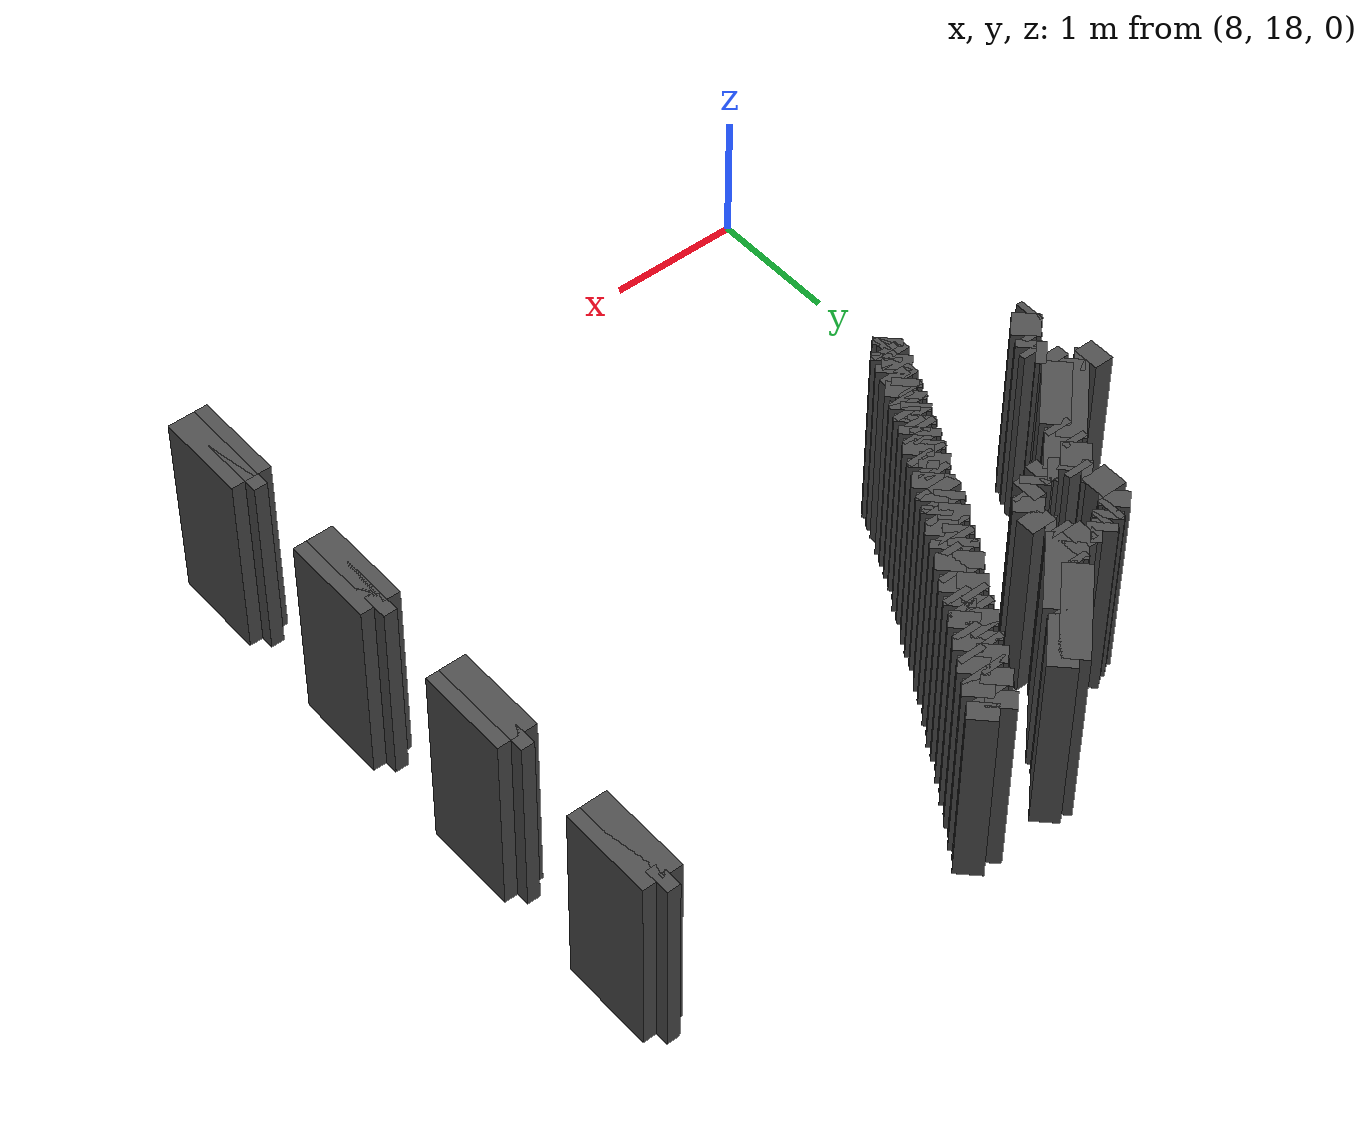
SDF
<sdf version="1.9">
 <model name="generated_walls">
  <static>true</static>
  <link name="wall_85_0">
   <pose>12.750 22.750 0.75 0 0 1.571</pose>
   <collision name="collision"><geometry><box><size>0.700 0.2 1.5</size></box></geometry></collision>
   <visual name="visual">
    <geometry><box><size>0.700 0.2 1.5</size></box></geometry>
    <material><ambient>0.3 0.3 0.3 1</ambient></material>
   </visual>
  </link>
  <link name="wall_85_1">
   <pose>12.800 23.100 0.75 0 0 0.000</pose>
   <collision name="collision"><geometry><box><size>0.100 0.2 1.5</size></box></geometry></collision>
   <visual name="visual">
    <geometry><box><size>0.100 0.2 1.5</size></box></geometry>
    <material><ambient>0.3 0.3 0.3 1</ambient></material>
   </visual>
  </link>
  <link name="wall_85_2">
   <pose>12.850 22.750 0.75 0 0 -1.571</pose>
   <collision name="collision"><geometry><box><size>0.700 0.2 1.5</size></box></geometry></collision>
   <visual name="visual">
    <geometry><box><size>0.700 0.2 1.5</size></box></geometry>
    <material><ambient>0.3 0.3 0.3 1</ambient></material>
   </visual>
  </link>
  <link name="wall_87_0">
   <pose>12.750 21.400 0.75 0 0 1.571</pose>
   <collision name="collision"><geometry><box><size>0.700 0.2 1.5</size></box></geometry></collision>
   <visual name="visual">
    <geometry><box><size>0.700 0.2 1.5</size></box></geometry>
    <material><ambient>0.3 0.3 0.3 1</ambient></material>
   </visual>
  </link>
  <link name="wall_87_1">
   <pose>12.800 21.750 0.75 0 0 0.000</pose>
   <collision name="collision"><geometry><box><size>0.100 0.2 1.5</size></box></geometry></collision>
   <visual name="visual">
    <geometry><box><size>0.100 0.2 1.5</size></box></geometry>
    <material><ambient>0.3 0.3 0.3 1</ambient></material>
   </visual>
  </link>
  <link name="wall_87_2">
   <pose>12.850 21.400 0.75 0 0 -1.571</pose>
   <collision name="collision"><geometry><box><size>0.700 0.2 1.5</size></box></geometry></collision>
   <visual name="visual">
    <geometry><box><size>0.700 0.2 1.5</size></box></geometry>
    <material><ambient>0.3 0.3 0.3 1</ambient></material>
   </visual>
  </link>
  <link name="wall_97_0">
   <pose>12.750 20.050 0.75 0 0 1.571</pose>
   <collision name="collision"><geometry><box><size>0.700 0.2 1.5</size></box></geometry></collision>
   <visual name="visual">
    <geometry><box><size>0.700 0.2 1.5</size></box></geometry>
    <material><ambient>0.3 0.3 0.3 1</ambient></material>
   </visual>
  </link>
  <link name="wall_97_1">
   <pose>12.800 20.400 0.75 0 0 0.000</pose>
   <collision name="collision"><geometry><box><size>0.100 0.2 1.5</size></box></geometry></collision>
   <visual name="visual">
    <geometry><box><size>0.100 0.2 1.5</size></box></geometry>
    <material><ambient>0.3 0.3 0.3 1</ambient></material>
   </visual>
  </link>
  <link name="wall_97_2">
   <pose>12.850 20.050 0.75 0 0 -1.571</pose>
   <collision name="collision"><geometry><box><size>0.700 0.2 1.5</size></box></geometry></collision>
   <visual name="visual">
    <geometry><box><size>0.700 0.2 1.5</size></box></geometry>
    <material><ambient>0.3 0.3 0.3 1</ambient></material>
   </visual>
  </link>
  <link name="wall_114_0">
   <pose>12.750 18.700 0.75 0 0 1.571</pose>
   <collision name="collision"><geometry><box><size>0.700 0.2 1.5</size></box></geometry></collision>
   <visual name="visual">
    <geometry><box><size>0.700 0.2 1.5</size></box></geometry>
    <material><ambient>0.3 0.3 0.3 1</ambient></material>
   </visual>
  </link>
  <link name="wall_114_1">
   <pose>12.800 19.050 0.75 0 0 0.000</pose>
   <collision name="collision"><geometry><box><size>0.100 0.2 1.5</size></box></geometry></collision>
   <visual name="visual">
    <geometry><box><size>0.100 0.2 1.5</size></box></geometry>
    <material><ambient>0.3 0.3 0.3 1</ambient></material>
   </visual>
  </link>
  <link name="wall_114_2">
   <pose>12.850 18.700 0.75 0 0 -1.571</pose>
   <collision name="collision"><geometry><box><size>0.700 0.2 1.5</size></box></geometry></collision>
   <visual name="visual">
    <geometry><box><size>0.700 0.2 1.5</size></box></geometry>
    <material><ambient>0.3 0.3 0.3 1</ambient></material>
   </visual>
  </link>
  <link name="wall_161_263">
   <pose>7.975 21.600 0.75 0 0 0.000</pose>
   <collision name="collision"><geometry><box><size>0.150 0.2 1.5</size></box></geometry></collision>
   <visual name="visual">
    <geometry><box><size>0.150 0.2 1.5</size></box></geometry>
    <material><ambient>0.3 0.3 0.3 1</ambient></material>
   </visual>
  </link>
  <link name="wall_161_264">
   <pose>8.075 21.575 0.75 0 0 -0.785</pose>
   <collision name="collision"><geometry><box><size>0.071 0.2 1.5</size></box></geometry></collision>
   <visual name="visual">
    <geometry><box><size>0.071 0.2 1.5</size></box></geometry>
    <material><ambient>0.3 0.3 0.3 1</ambient></material>
   </visual>
  </link>
  <link name="wall_161_265">
   <pose>8.350 21.800 0.75 0 0 0.785</pose>
   <collision name="collision"><geometry><box><size>0.707 0.2 1.5</size></box></geometry></collision>
   <visual name="visual">
    <geometry><box><size>0.707 0.2 1.5</size></box></geometry>
    <material><ambient>0.3 0.3 0.3 1</ambient></material>
   </visual>
  </link>
  <link name="wall_161_266">
   <pose>8.600 22.075 0.75 0 0 1.571</pose>
   <collision name="collision"><geometry><box><size>0.050 0.2 1.5</size></box></geometry></collision>
   <visual name="visual">
    <geometry><box><size>0.050 0.2 1.5</size></box></geometry>
    <material><ambient>0.3 0.3 0.3 1</ambient></material>
   </visual>
  </link>
  <link name="wall_161_267">
   <pose>8.675 22.175 0.75 0 0 0.785</pose>
   <collision name="collision"><geometry><box><size>0.212 0.2 1.5</size></box></geometry></collision>
   <visual name="visual">
    <geometry><box><size>0.212 0.2 1.5</size></box></geometry>
    <material><ambient>0.3 0.3 0.3 1</ambient></material>
   </visual>
  </link>
  <link name="wall_161_268">
   <pose>8.750 22.275 0.75 0 0 1.571</pose>
   <collision name="collision"><geometry><box><size>0.050 0.2 1.5</size></box></geometry></collision>
   <visual name="visual">
    <geometry><box><size>0.050 0.2 1.5</size></box></geometry>
    <material><ambient>0.3 0.3 0.3 1</ambient></material>
   </visual>
  </link>
  <link name="wall_161_269">
   <pose>8.725 22.325 0.75 0 0 2.356</pose>
   <collision name="collision"><geometry><box><size>0.071 0.2 1.5</size></box></geometry></collision>
   <visual name="visual">
    <geometry><box><size>0.071 0.2 1.5</size></box></geometry>
    <material><ambient>0.3 0.3 0.3 1</ambient></material>
   </visual>
  </link>
  <link name="wall_161_270">
   <pose>8.700 22.450 0.75 0 0 1.571</pose>
   <collision name="collision"><geometry><box><size>0.200 0.2 1.5</size></box></geometry></collision>
   <visual name="visual">
    <geometry><box><size>0.200 0.2 1.5</size></box></geometry>
    <material><ambient>0.3 0.3 0.3 1</ambient></material>
   </visual>
  </link>
  <link name="wall_161_271">
   <pose>8.750 22.600 0.75 0 0 0.785</pose>
   <collision name="collision"><geometry><box><size>0.141 0.2 1.5</size></box></geometry></collision>
   <visual name="visual">
    <geometry><box><size>0.141 0.2 1.5</size></box></geometry>
    <material><ambient>0.3 0.3 0.3 1</ambient></material>
   </visual>
  </link>
  <link name="wall_161_272">
   <pose>8.825 22.650 0.75 0 0 0.000</pose>
   <collision name="collision"><geometry><box><size>0.050 0.2 1.5</size></box></geometry></collision>
   <visual name="visual">
    <geometry><box><size>0.050 0.2 1.5</size></box></geometry>
    <material><ambient>0.3 0.3 0.3 1</ambient></material>
   </visual>
  </link>
  <link name="wall_161_273">
   <pose>8.875 22.675 0.75 0 0 0.785</pose>
   <collision name="collision"><geometry><box><size>0.071 0.2 1.5</size></box></geometry></collision>
   <visual name="visual">
    <geometry><box><size>0.071 0.2 1.5</size></box></geometry>
    <material><ambient>0.3 0.3 0.3 1</ambient></material>
   </visual>
  </link>
  <link name="wall_161_274">
   <pose>8.925 22.700 0.75 0 0 0.000</pose>
   <collision name="collision"><geometry><box><size>0.050 0.2 1.5</size></box></geometry></collision>
   <visual name="visual">
    <geometry><box><size>0.050 0.2 1.5</size></box></geometry>
    <material><ambient>0.3 0.3 0.3 1</ambient></material>
   </visual>
  </link>
  <link name="wall_161_275">
   <pose>8.975 22.725 0.75 0 0 0.785</pose>
   <collision name="collision"><geometry><box><size>0.071 0.2 1.5</size></box></geometry></collision>
   <visual name="visual">
    <geometry><box><size>0.071 0.2 1.5</size></box></geometry>
    <material><ambient>0.3 0.3 0.3 1</ambient></material>
   </visual>
  </link>
  <link name="wall_161_276">
   <pose>9.025 22.725 0.75 0 0 -0.785</pose>
   <collision name="collision"><geometry><box><size>0.071 0.2 1.5</size></box></geometry></collision>
   <visual name="visual">
    <geometry><box><size>0.071 0.2 1.5</size></box></geometry>
    <material><ambient>0.3 0.3 0.3 1</ambient></material>
   </visual>
  </link>
  <link name="wall_161_277">
   <pose>9.125 22.700 0.75 0 0 0.000</pose>
   <collision name="collision"><geometry><box><size>0.150 0.2 1.5</size></box></geometry></collision>
   <visual name="visual">
    <geometry><box><size>0.150 0.2 1.5</size></box></geometry>
    <material><ambient>0.3 0.3 0.3 1</ambient></material>
   </visual>
  </link>
  <link name="wall_161_278">
   <pose>9.250 22.750 0.75 0 0 0.785</pose>
   <collision name="collision"><geometry><box><size>0.141 0.2 1.5</size></box></geometry></collision>
   <visual name="visual">
    <geometry><box><size>0.141 0.2 1.5</size></box></geometry>
    <material><ambient>0.3 0.3 0.3 1</ambient></material>
   </visual>
  </link>
  <link name="wall_161_279">
   <pose>9.300 22.825 0.75 0 0 1.571</pose>
   <collision name="collision"><geometry><box><size>0.050 0.2 1.5</size></box></geometry></collision>
   <visual name="visual">
    <geometry><box><size>0.050 0.2 1.5</size></box></geometry>
    <material><ambient>0.3 0.3 0.3 1</ambient></material>
   </visual>
  </link>
  <link name="wall_161_280">
   <pose>9.575 23.125 0.75 0 0 0.785</pose>
   <collision name="collision"><geometry><box><size>0.778 0.2 1.5</size></box></geometry></collision>
   <visual name="visual">
    <geometry><box><size>0.778 0.2 1.5</size></box></geometry>
    <material><ambient>0.3 0.3 0.3 1</ambient></material>
   </visual>
  </link>
  <link name="wall_161_728">
   <pose>10.550 23.350 0.75 0 0 -2.356</pose>
   <collision name="collision"><geometry><box><size>0.141 0.2 1.5</size></box></geometry></collision>
   <visual name="visual">
    <geometry><box><size>0.141 0.2 1.5</size></box></geometry>
    <material><ambient>0.3 0.3 0.3 1</ambient></material>
   </visual>
  </link>
  <link name="wall_161_729">
   <pose>10.500 23.275 0.75 0 0 -1.571</pose>
   <collision name="collision"><geometry><box><size>0.050 0.2 1.5</size></box></geometry></collision>
   <visual name="visual">
    <geometry><box><size>0.050 0.2 1.5</size></box></geometry>
    <material><ambient>0.3 0.3 0.3 1</ambient></material>
   </visual>
  </link>
  <link name="wall_161_730">
   <pose>10.450 23.200 0.75 0 0 -2.356</pose>
   <collision name="collision"><geometry><box><size>0.141 0.2 1.5</size></box></geometry></collision>
   <visual name="visual">
    <geometry><box><size>0.141 0.2 1.5</size></box></geometry>
    <material><ambient>0.3 0.3 0.3 1</ambient></material>
   </visual>
  </link>
  <link name="wall_161_731">
   <pose>10.400 23.125 0.75 0 0 -1.571</pose>
   <collision name="collision"><geometry><box><size>0.050 0.2 1.5</size></box></geometry></collision>
   <visual name="visual">
    <geometry><box><size>0.050 0.2 1.5</size></box></geometry>
    <material><ambient>0.3 0.3 0.3 1</ambient></material>
   </visual>
  </link>
  <link name="wall_161_732">
   <pose>10.350 23.050 0.75 0 0 -2.356</pose>
   <collision name="collision"><geometry><box><size>0.141 0.2 1.5</size></box></geometry></collision>
   <visual name="visual">
    <geometry><box><size>0.141 0.2 1.5</size></box></geometry>
    <material><ambient>0.3 0.3 0.3 1</ambient></material>
   </visual>
  </link>
  <link name="wall_161_733">
   <pose>10.300 22.975 0.75 0 0 -1.571</pose>
   <collision name="collision"><geometry><box><size>0.050 0.2 1.5</size></box></geometry></collision>
   <visual name="visual">
    <geometry><box><size>0.050 0.2 1.5</size></box></geometry>
    <material><ambient>0.3 0.3 0.3 1</ambient></material>
   </visual>
  </link>
  <link name="wall_161_734">
   <pose>10.250 22.900 0.75 0 0 -2.356</pose>
   <collision name="collision"><geometry><box><size>0.141 0.2 1.5</size></box></geometry></collision>
   <visual name="visual">
    <geometry><box><size>0.141 0.2 1.5</size></box></geometry>
    <material><ambient>0.3 0.3 0.3 1</ambient></material>
   </visual>
  </link>
  <link name="wall_161_735">
   <pose>10.200 22.825 0.75 0 0 -1.571</pose>
   <collision name="collision"><geometry><box><size>0.050 0.2 1.5</size></box></geometry></collision>
   <visual name="visual">
    <geometry><box><size>0.050 0.2 1.5</size></box></geometry>
    <material><ambient>0.3 0.3 0.3 1</ambient></material>
   </visual>
  </link>
  <link name="wall_161_736">
   <pose>10.150 22.750 0.75 0 0 -2.356</pose>
   <collision name="collision"><geometry><box><size>0.141 0.2 1.5</size></box></geometry></collision>
   <visual name="visual">
    <geometry><box><size>0.141 0.2 1.5</size></box></geometry>
    <material><ambient>0.3 0.3 0.3 1</ambient></material>
   </visual>
  </link>
  <link name="wall_161_737">
   <pose>10.100 22.675 0.75 0 0 -1.571</pose>
   <collision name="collision"><geometry><box><size>0.050 0.2 1.5</size></box></geometry></collision>
   <visual name="visual">
    <geometry><box><size>0.050 0.2 1.5</size></box></geometry>
    <material><ambient>0.3 0.3 0.3 1</ambient></material>
   </visual>
  </link>
  <link name="wall_161_738">
   <pose>10.075 22.625 0.75 0 0 -2.356</pose>
   <collision name="collision"><geometry><box><size>0.071 0.2 1.5</size></box></geometry></collision>
   <visual name="visual">
    <geometry><box><size>0.071 0.2 1.5</size></box></geometry>
    <material><ambient>0.3 0.3 0.3 1</ambient></material>
   </visual>
  </link>
  <link name="wall_161_739">
   <pose>10.050 22.575 0.75 0 0 -1.571</pose>
   <collision name="collision"><geometry><box><size>0.050 0.2 1.5</size></box></geometry></collision>
   <visual name="visual">
    <geometry><box><size>0.050 0.2 1.5</size></box></geometry>
    <material><ambient>0.3 0.3 0.3 1</ambient></material>
   </visual>
  </link>
  <link name="wall_161_740">
   <pose>10.000 22.500 0.75 0 0 -2.356</pose>
   <collision name="collision"><geometry><box><size>0.141 0.2 1.5</size></box></geometry></collision>
   <visual name="visual">
    <geometry><box><size>0.141 0.2 1.5</size></box></geometry>
    <material><ambient>0.3 0.3 0.3 1</ambient></material>
   </visual>
  </link>
  <link name="wall_161_741">
   <pose>9.950 22.425 0.75 0 0 -1.571</pose>
   <collision name="collision"><geometry><box><size>0.050 0.2 1.5</size></box></geometry></collision>
   <visual name="visual">
    <geometry><box><size>0.050 0.2 1.5</size></box></geometry>
    <material><ambient>0.3 0.3 0.3 1</ambient></material>
   </visual>
  </link>
  <link name="wall_161_742">
   <pose>9.900 22.350 0.75 0 0 -2.356</pose>
   <collision name="collision"><geometry><box><size>0.141 0.2 1.5</size></box></geometry></collision>
   <visual name="visual">
    <geometry><box><size>0.141 0.2 1.5</size></box></geometry>
    <material><ambient>0.3 0.3 0.3 1</ambient></material>
   </visual>
  </link>
  <link name="wall_161_743">
   <pose>9.850 22.275 0.75 0 0 -1.571</pose>
   <collision name="collision"><geometry><box><size>0.050 0.2 1.5</size></box></geometry></collision>
   <visual name="visual">
    <geometry><box><size>0.050 0.2 1.5</size></box></geometry>
    <material><ambient>0.3 0.3 0.3 1</ambient></material>
   </visual>
  </link>
  <link name="wall_161_744">
   <pose>9.825 22.225 0.75 0 0 -2.356</pose>
   <collision name="collision"><geometry><box><size>0.071 0.2 1.5</size></box></geometry></collision>
   <visual name="visual">
    <geometry><box><size>0.071 0.2 1.5</size></box></geometry>
    <material><ambient>0.3 0.3 0.3 1</ambient></material>
   </visual>
  </link>
  <link name="wall_161_745">
   <pose>9.800 22.175 0.75 0 0 -1.571</pose>
   <collision name="collision"><geometry><box><size>0.050 0.2 1.5</size></box></geometry></collision>
   <visual name="visual">
    <geometry><box><size>0.050 0.2 1.5</size></box></geometry>
    <material><ambient>0.3 0.3 0.3 1</ambient></material>
   </visual>
  </link>
  <link name="wall_161_746">
   <pose>9.750 22.100 0.75 0 0 -2.356</pose>
   <collision name="collision"><geometry><box><size>0.141 0.2 1.5</size></box></geometry></collision>
   <visual name="visual">
    <geometry><box><size>0.141 0.2 1.5</size></box></geometry>
    <material><ambient>0.3 0.3 0.3 1</ambient></material>
   </visual>
  </link>
  <link name="wall_161_747">
   <pose>9.700 22.025 0.75 0 0 -1.571</pose>
   <collision name="collision"><geometry><box><size>0.050 0.2 1.5</size></box></geometry></collision>
   <visual name="visual">
    <geometry><box><size>0.050 0.2 1.5</size></box></geometry>
    <material><ambient>0.3 0.3 0.3 1</ambient></material>
   </visual>
  </link>
  <link name="wall_161_748">
   <pose>9.675 21.975 0.75 0 0 -2.356</pose>
   <collision name="collision"><geometry><box><size>0.071 0.2 1.5</size></box></geometry></collision>
   <visual name="visual">
    <geometry><box><size>0.071 0.2 1.5</size></box></geometry>
    <material><ambient>0.3 0.3 0.3 1</ambient></material>
   </visual>
  </link>
  <link name="wall_161_749">
   <pose>9.650 21.925 0.75 0 0 -1.571</pose>
   <collision name="collision"><geometry><box><size>0.050 0.2 1.5</size></box></geometry></collision>
   <visual name="visual">
    <geometry><box><size>0.050 0.2 1.5</size></box></geometry>
    <material><ambient>0.3 0.3 0.3 1</ambient></material>
   </visual>
  </link>
  <link name="wall_161_750">
   <pose>9.625 21.875 0.75 0 0 -2.356</pose>
   <collision name="collision"><geometry><box><size>0.071 0.2 1.5</size></box></geometry></collision>
   <visual name="visual">
    <geometry><box><size>0.071 0.2 1.5</size></box></geometry>
    <material><ambient>0.3 0.3 0.3 1</ambient></material>
   </visual>
  </link>
  <link name="wall_161_751">
   <pose>9.600 21.825 0.75 0 0 -1.571</pose>
   <collision name="collision"><geometry><box><size>0.050 0.2 1.5</size></box></geometry></collision>
   <visual name="visual">
    <geometry><box><size>0.050 0.2 1.5</size></box></geometry>
    <material><ambient>0.3 0.3 0.3 1</ambient></material>
   </visual>
  </link>
  <link name="wall_161_752">
   <pose>9.550 21.750 0.75 0 0 -2.356</pose>
   <collision name="collision"><geometry><box><size>0.141 0.2 1.5</size></box></geometry></collision>
   <visual name="visual">
    <geometry><box><size>0.141 0.2 1.5</size></box></geometry>
    <material><ambient>0.3 0.3 0.3 1</ambient></material>
   </visual>
  </link>
  <link name="wall_161_753">
   <pose>9.500 21.675 0.75 0 0 -1.571</pose>
   <collision name="collision"><geometry><box><size>0.050 0.2 1.5</size></box></geometry></collision>
   <visual name="visual">
    <geometry><box><size>0.050 0.2 1.5</size></box></geometry>
    <material><ambient>0.3 0.3 0.3 1</ambient></material>
   </visual>
  </link>
  <link name="wall_161_754">
   <pose>9.475 21.625 0.75 0 0 -2.356</pose>
   <collision name="collision"><geometry><box><size>0.071 0.2 1.5</size></box></geometry></collision>
   <visual name="visual">
    <geometry><box><size>0.071 0.2 1.5</size></box></geometry>
    <material><ambient>0.3 0.3 0.3 1</ambient></material>
   </visual>
  </link>
  <link name="wall_161_755">
   <pose>9.450 21.575 0.75 0 0 -1.571</pose>
   <collision name="collision"><geometry><box><size>0.050 0.2 1.5</size></box></geometry></collision>
   <visual name="visual">
    <geometry><box><size>0.050 0.2 1.5</size></box></geometry>
    <material><ambient>0.3 0.3 0.3 1</ambient></material>
   </visual>
  </link>
  <link name="wall_161_756">
   <pose>9.400 21.500 0.75 0 0 -2.356</pose>
   <collision name="collision"><geometry><box><size>0.141 0.2 1.5</size></box></geometry></collision>
   <visual name="visual">
    <geometry><box><size>0.141 0.2 1.5</size></box></geometry>
    <material><ambient>0.3 0.3 0.3 1</ambient></material>
   </visual>
  </link>
  <link name="wall_161_757">
   <pose>9.350 21.425 0.75 0 0 -1.571</pose>
   <collision name="collision"><geometry><box><size>0.050 0.2 1.5</size></box></geometry></collision>
   <visual name="visual">
    <geometry><box><size>0.050 0.2 1.5</size></box></geometry>
    <material><ambient>0.3 0.3 0.3 1</ambient></material>
   </visual>
  </link>
  <link name="wall_161_758">
   <pose>9.325 21.375 0.75 0 0 -2.356</pose>
   <collision name="collision"><geometry><box><size>0.071 0.2 1.5</size></box></geometry></collision>
   <visual name="visual">
    <geometry><box><size>0.071 0.2 1.5</size></box></geometry>
    <material><ambient>0.3 0.3 0.3 1</ambient></material>
   </visual>
  </link>
  <link name="wall_161_759">
   <pose>9.300 21.325 0.75 0 0 -1.571</pose>
   <collision name="collision"><geometry><box><size>0.050 0.2 1.5</size></box></geometry></collision>
   <visual name="visual">
    <geometry><box><size>0.050 0.2 1.5</size></box></geometry>
    <material><ambient>0.3 0.3 0.3 1</ambient></material>
   </visual>
  </link>
  <link name="wall_161_760">
   <pose>9.275 21.275 0.75 0 0 -2.356</pose>
   <collision name="collision"><geometry><box><size>0.071 0.2 1.5</size></box></geometry></collision>
   <visual name="visual">
    <geometry><box><size>0.071 0.2 1.5</size></box></geometry>
    <material><ambient>0.3 0.3 0.3 1</ambient></material>
   </visual>
  </link>
  <link name="wall_161_761">
   <pose>9.250 21.225 0.75 0 0 -1.571</pose>
   <collision name="collision"><geometry><box><size>0.050 0.2 1.5</size></box></geometry></collision>
   <visual name="visual">
    <geometry><box><size>0.050 0.2 1.5</size></box></geometry>
    <material><ambient>0.3 0.3 0.3 1</ambient></material>
   </visual>
  </link>
  <link name="wall_161_762">
   <pose>9.225 21.175 0.75 0 0 -2.356</pose>
   <collision name="collision"><geometry><box><size>0.071 0.2 1.5</size></box></geometry></collision>
   <visual name="visual">
    <geometry><box><size>0.071 0.2 1.5</size></box></geometry>
    <material><ambient>0.3 0.3 0.3 1</ambient></material>
   </visual>
  </link>
  <link name="wall_161_763">
   <pose>9.200 21.125 0.75 0 0 -1.571</pose>
   <collision name="collision"><geometry><box><size>0.050 0.2 1.5</size></box></geometry></collision>
   <visual name="visual">
    <geometry><box><size>0.050 0.2 1.5</size></box></geometry>
    <material><ambient>0.3 0.3 0.3 1</ambient></material>
   </visual>
  </link>
  <link name="wall_161_764">
   <pose>9.150 21.050 0.75 0 0 -2.356</pose>
   <collision name="collision"><geometry><box><size>0.141 0.2 1.5</size></box></geometry></collision>
   <visual name="visual">
    <geometry><box><size>0.141 0.2 1.5</size></box></geometry>
    <material><ambient>0.3 0.3 0.3 1</ambient></material>
   </visual>
  </link>
  <link name="wall_161_765">
   <pose>9.100 20.950 0.75 0 0 -1.571</pose>
   <collision name="collision"><geometry><box><size>0.100 0.2 1.5</size></box></geometry></collision>
   <visual name="visual">
    <geometry><box><size>0.100 0.2 1.5</size></box></geometry>
    <material><ambient>0.3 0.3 0.3 1</ambient></material>
   </visual>
  </link>
  <link name="wall_161_766">
   <pose>9.075 20.875 0.75 0 0 -2.356</pose>
   <collision name="collision"><geometry><box><size>0.071 0.2 1.5</size></box></geometry></collision>
   <visual name="visual">
    <geometry><box><size>0.071 0.2 1.5</size></box></geometry>
    <material><ambient>0.3 0.3 0.3 1</ambient></material>
   </visual>
  </link>
  <link name="wall_161_767">
   <pose>9.050 20.825 0.75 0 0 -1.571</pose>
   <collision name="collision"><geometry><box><size>0.050 0.2 1.5</size></box></geometry></collision>
   <visual name="visual">
    <geometry><box><size>0.050 0.2 1.5</size></box></geometry>
    <material><ambient>0.3 0.3 0.3 1</ambient></material>
   </visual>
  </link>
  <link name="wall_161_768">
   <pose>9.025 20.775 0.75 0 0 -2.356</pose>
   <collision name="collision"><geometry><box><size>0.071 0.2 1.5</size></box></geometry></collision>
   <visual name="visual">
    <geometry><box><size>0.071 0.2 1.5</size></box></geometry>
    <material><ambient>0.3 0.3 0.3 1</ambient></material>
   </visual>
  </link>
  <link name="wall_161_769">
   <pose>9.000 20.725 0.75 0 0 -1.571</pose>
   <collision name="collision"><geometry><box><size>0.050 0.2 1.5</size></box></geometry></collision>
   <visual name="visual">
    <geometry><box><size>0.050 0.2 1.5</size></box></geometry>
    <material><ambient>0.3 0.3 0.3 1</ambient></material>
   </visual>
  </link>
  <link name="wall_161_770">
   <pose>8.975 20.700 0.75 0 0 3.142</pose>
   <collision name="collision"><geometry><box><size>0.050 0.2 1.5</size></box></geometry></collision>
   <visual name="visual">
    <geometry><box><size>0.050 0.2 1.5</size></box></geometry>
    <material><ambient>0.3 0.3 0.3 1</ambient></material>
   </visual>
  </link>
  <link name="wall_161_771">
   <pose>8.925 20.675 0.75 0 0 -2.356</pose>
   <collision name="collision"><geometry><box><size>0.071 0.2 1.5</size></box></geometry></collision>
   <visual name="visual">
    <geometry><box><size>0.071 0.2 1.5</size></box></geometry>
    <material><ambient>0.3 0.3 0.3 1</ambient></material>
   </visual>
  </link>
  <link name="wall_161_772">
   <pose>8.925 20.675 0.75 0 0 0.785</pose>
   <collision name="collision"><geometry><box><size>0.071 0.2 1.5</size></box></geometry></collision>
   <visual name="visual">
    <geometry><box><size>0.071 0.2 1.5</size></box></geometry>
    <material><ambient>0.3 0.3 0.3 1</ambient></material>
   </visual>
  </link>
  <link name="wall_161_773">
   <pose>8.950 20.750 0.75 0 0 1.571</pose>
   <collision name="collision"><geometry><box><size>0.100 0.2 1.5</size></box></geometry></collision>
   <visual name="visual">
    <geometry><box><size>0.100 0.2 1.5</size></box></geometry>
    <material><ambient>0.3 0.3 0.3 1</ambient></material>
   </visual>
  </link>
  <link name="wall_161_774">
   <pose>9.000 20.850 0.75 0 0 0.785</pose>
   <collision name="collision"><geometry><box><size>0.141 0.2 1.5</size></box></geometry></collision>
   <visual name="visual">
    <geometry><box><size>0.141 0.2 1.5</size></box></geometry>
    <material><ambient>0.3 0.3 0.3 1</ambient></material>
   </visual>
  </link>
  <link name="wall_161_775">
   <pose>9.050 20.950 0.75 0 0 1.571</pose>
   <collision name="collision"><geometry><box><size>0.100 0.2 1.5</size></box></geometry></collision>
   <visual name="visual">
    <geometry><box><size>0.100 0.2 1.5</size></box></geometry>
    <material><ambient>0.3 0.3 0.3 1</ambient></material>
   </visual>
  </link>
  <link name="wall_161_776">
   <pose>9.075 21.025 0.75 0 0 0.785</pose>
   <collision name="collision"><geometry><box><size>0.071 0.2 1.5</size></box></geometry></collision>
   <visual name="visual">
    <geometry><box><size>0.071 0.2 1.5</size></box></geometry>
    <material><ambient>0.3 0.3 0.3 1</ambient></material>
   </visual>
  </link>
  <link name="wall_161_777">
   <pose>9.100 21.075 0.75 0 0 1.571</pose>
   <collision name="collision"><geometry><box><size>0.050 0.2 1.5</size></box></geometry></collision>
   <visual name="visual">
    <geometry><box><size>0.050 0.2 1.5</size></box></geometry>
    <material><ambient>0.3 0.3 0.3 1</ambient></material>
   </visual>
  </link>
  <link name="wall_161_778">
   <pose>9.125 21.125 0.75 0 0 0.785</pose>
   <collision name="collision"><geometry><box><size>0.071 0.2 1.5</size></box></geometry></collision>
   <visual name="visual">
    <geometry><box><size>0.071 0.2 1.5</size></box></geometry>
    <material><ambient>0.3 0.3 0.3 1</ambient></material>
   </visual>
  </link>
  <link name="wall_161_779">
   <pose>9.150 21.175 0.75 0 0 1.571</pose>
   <collision name="collision"><geometry><box><size>0.050 0.2 1.5</size></box></geometry></collision>
   <visual name="visual">
    <geometry><box><size>0.050 0.2 1.5</size></box></geometry>
    <material><ambient>0.3 0.3 0.3 1</ambient></material>
   </visual>
  </link>
  <link name="wall_161_780">
   <pose>9.175 21.225 0.75 0 0 0.785</pose>
   <collision name="collision"><geometry><box><size>0.071 0.2 1.5</size></box></geometry></collision>
   <visual name="visual">
    <geometry><box><size>0.071 0.2 1.5</size></box></geometry>
    <material><ambient>0.3 0.3 0.3 1</ambient></material>
   </visual>
  </link>
  <link name="wall_161_781">
   <pose>9.200 21.275 0.75 0 0 1.571</pose>
   <collision name="collision"><geometry><box><size>0.050 0.2 1.5</size></box></geometry></collision>
   <visual name="visual">
    <geometry><box><size>0.050 0.2 1.5</size></box></geometry>
    <material><ambient>0.3 0.3 0.3 1</ambient></material>
   </visual>
  </link>
  <link name="wall_161_782">
   <pose>9.225 21.325 0.75 0 0 0.785</pose>
   <collision name="collision"><geometry><box><size>0.071 0.2 1.5</size></box></geometry></collision>
   <visual name="visual">
    <geometry><box><size>0.071 0.2 1.5</size></box></geometry>
    <material><ambient>0.3 0.3 0.3 1</ambient></material>
   </visual>
  </link>
  <link name="wall_161_783">
   <pose>9.250 21.375 0.75 0 0 1.571</pose>
   <collision name="collision"><geometry><box><size>0.050 0.2 1.5</size></box></geometry></collision>
   <visual name="visual">
    <geometry><box><size>0.050 0.2 1.5</size></box></geometry>
    <material><ambient>0.3 0.3 0.3 1</ambient></material>
   </visual>
  </link>
  <link name="wall_161_784">
   <pose>9.275 21.425 0.75 0 0 0.785</pose>
   <collision name="collision"><geometry><box><size>0.071 0.2 1.5</size></box></geometry></collision>
   <visual name="visual">
    <geometry><box><size>0.071 0.2 1.5</size></box></geometry>
    <material><ambient>0.3 0.3 0.3 1</ambient></material>
   </visual>
  </link>
  <link name="wall_161_785">
   <pose>9.300 21.475 0.75 0 0 1.571</pose>
   <collision name="collision"><geometry><box><size>0.050 0.2 1.5</size></box></geometry></collision>
   <visual name="visual">
    <geometry><box><size>0.050 0.2 1.5</size></box></geometry>
    <material><ambient>0.3 0.3 0.3 1</ambient></material>
   </visual>
  </link>
  <link name="wall_161_786">
   <pose>9.325 21.525 0.75 0 0 0.785</pose>
   <collision name="collision"><geometry><box><size>0.071 0.2 1.5</size></box></geometry></collision>
   <visual name="visual">
    <geometry><box><size>0.071 0.2 1.5</size></box></geometry>
    <material><ambient>0.3 0.3 0.3 1</ambient></material>
   </visual>
  </link>
  <link name="wall_161_787">
   <pose>9.350 21.575 0.75 0 0 1.571</pose>
   <collision name="collision"><geometry><box><size>0.050 0.2 1.5</size></box></geometry></collision>
   <visual name="visual">
    <geometry><box><size>0.050 0.2 1.5</size></box></geometry>
    <material><ambient>0.3 0.3 0.3 1</ambient></material>
   </visual>
  </link>
  <link name="wall_161_788">
   <pose>9.400 21.650 0.75 0 0 0.785</pose>
   <collision name="collision"><geometry><box><size>0.141 0.2 1.5</size></box></geometry></collision>
   <visual name="visual">
    <geometry><box><size>0.141 0.2 1.5</size></box></geometry>
    <material><ambient>0.3 0.3 0.3 1</ambient></material>
   </visual>
  </link>
  <link name="wall_161_789">
   <pose>9.450 21.725 0.75 0 0 1.571</pose>
   <collision name="collision"><geometry><box><size>0.050 0.2 1.5</size></box></geometry></collision>
   <visual name="visual">
    <geometry><box><size>0.050 0.2 1.5</size></box></geometry>
    <material><ambient>0.3 0.3 0.3 1</ambient></material>
   </visual>
  </link>
  <link name="wall_161_790">
   <pose>9.475 21.775 0.75 0 0 0.785</pose>
   <collision name="collision"><geometry><box><size>0.071 0.2 1.5</size></box></geometry></collision>
   <visual name="visual">
    <geometry><box><size>0.071 0.2 1.5</size></box></geometry>
    <material><ambient>0.3 0.3 0.3 1</ambient></material>
   </visual>
  </link>
  <link name="wall_161_791">
   <pose>9.500 21.850 0.75 0 0 1.571</pose>
   <collision name="collision"><geometry><box><size>0.100 0.2 1.5</size></box></geometry></collision>
   <visual name="visual">
    <geometry><box><size>0.100 0.2 1.5</size></box></geometry>
    <material><ambient>0.3 0.3 0.3 1</ambient></material>
   </visual>
  </link>
  <link name="wall_161_792">
   <pose>9.525 21.925 0.75 0 0 0.785</pose>
   <collision name="collision"><geometry><box><size>0.071 0.2 1.5</size></box></geometry></collision>
   <visual name="visual">
    <geometry><box><size>0.071 0.2 1.5</size></box></geometry>
    <material><ambient>0.3 0.3 0.3 1</ambient></material>
   </visual>
  </link>
  <link name="wall_161_793">
   <pose>9.550 21.975 0.75 0 0 1.571</pose>
   <collision name="collision"><geometry><box><size>0.050 0.2 1.5</size></box></geometry></collision>
   <visual name="visual">
    <geometry><box><size>0.050 0.2 1.5</size></box></geometry>
    <material><ambient>0.3 0.3 0.3 1</ambient></material>
   </visual>
  </link>
  <link name="wall_161_794">
   <pose>9.600 22.050 0.75 0 0 0.785</pose>
   <collision name="collision"><geometry><box><size>0.141 0.2 1.5</size></box></geometry></collision>
   <visual name="visual">
    <geometry><box><size>0.141 0.2 1.5</size></box></geometry>
    <material><ambient>0.3 0.3 0.3 1</ambient></material>
   </visual>
  </link>
  <link name="wall_161_795">
   <pose>9.650 22.125 0.75 0 0 1.571</pose>
   <collision name="collision"><geometry><box><size>0.050 0.2 1.5</size></box></geometry></collision>
   <visual name="visual">
    <geometry><box><size>0.050 0.2 1.5</size></box></geometry>
    <material><ambient>0.3 0.3 0.3 1</ambient></material>
   </visual>
  </link>
  <link name="wall_161_796">
   <pose>9.675 22.175 0.75 0 0 0.785</pose>
   <collision name="collision"><geometry><box><size>0.071 0.2 1.5</size></box></geometry></collision>
   <visual name="visual">
    <geometry><box><size>0.071 0.2 1.5</size></box></geometry>
    <material><ambient>0.3 0.3 0.3 1</ambient></material>
   </visual>
  </link>
  <link name="wall_161_797">
   <pose>9.700 22.225 0.75 0 0 1.571</pose>
   <collision name="collision"><geometry><box><size>0.050 0.2 1.5</size></box></geometry></collision>
   <visual name="visual">
    <geometry><box><size>0.050 0.2 1.5</size></box></geometry>
    <material><ambient>0.3 0.3 0.3 1</ambient></material>
   </visual>
  </link>
  <link name="wall_161_798">
   <pose>9.725 22.275 0.75 0 0 0.785</pose>
   <collision name="collision"><geometry><box><size>0.071 0.2 1.5</size></box></geometry></collision>
   <visual name="visual">
    <geometry><box><size>0.071 0.2 1.5</size></box></geometry>
    <material><ambient>0.3 0.3 0.3 1</ambient></material>
   </visual>
  </link>
  <link name="wall_161_799">
   <pose>9.750 22.325 0.75 0 0 1.571</pose>
   <collision name="collision"><geometry><box><size>0.050 0.2 1.5</size></box></geometry></collision>
   <visual name="visual">
    <geometry><box><size>0.050 0.2 1.5</size></box></geometry>
    <material><ambient>0.3 0.3 0.3 1</ambient></material>
   </visual>
  </link>
  <link name="wall_161_800">
   <pose>9.800 22.400 0.75 0 0 0.785</pose>
   <collision name="collision"><geometry><box><size>0.141 0.2 1.5</size></box></geometry></collision>
   <visual name="visual">
    <geometry><box><size>0.141 0.2 1.5</size></box></geometry>
    <material><ambient>0.3 0.3 0.3 1</ambient></material>
   </visual>
  </link>
  <link name="wall_161_801">
   <pose>9.850 22.475 0.75 0 0 1.571</pose>
   <collision name="collision"><geometry><box><size>0.050 0.2 1.5</size></box></geometry></collision>
   <visual name="visual">
    <geometry><box><size>0.050 0.2 1.5</size></box></geometry>
    <material><ambient>0.3 0.3 0.3 1</ambient></material>
   </visual>
  </link>
  <link name="wall_161_802">
   <pose>9.900 22.550 0.75 0 0 0.785</pose>
   <collision name="collision"><geometry><box><size>0.141 0.2 1.5</size></box></geometry></collision>
   <visual name="visual">
    <geometry><box><size>0.141 0.2 1.5</size></box></geometry>
    <material><ambient>0.3 0.3 0.3 1</ambient></material>
   </visual>
  </link>
  <link name="wall_161_803">
   <pose>9.950 22.625 0.75 0 0 1.571</pose>
   <collision name="collision"><geometry><box><size>0.050 0.2 1.5</size></box></geometry></collision>
   <visual name="visual">
    <geometry><box><size>0.050 0.2 1.5</size></box></geometry>
    <material><ambient>0.3 0.3 0.3 1</ambient></material>
   </visual>
  </link>
  <link name="wall_161_804">
   <pose>9.975 22.675 0.75 0 0 0.785</pose>
   <collision name="collision"><geometry><box><size>0.071 0.2 1.5</size></box></geometry></collision>
   <visual name="visual">
    <geometry><box><size>0.071 0.2 1.5</size></box></geometry>
    <material><ambient>0.3 0.3 0.3 1</ambient></material>
   </visual>
  </link>
  <link name="wall_161_805">
   <pose>10.000 22.725 0.75 0 0 1.571</pose>
   <collision name="collision"><geometry><box><size>0.050 0.2 1.5</size></box></geometry></collision>
   <visual name="visual">
    <geometry><box><size>0.050 0.2 1.5</size></box></geometry>
    <material><ambient>0.3 0.3 0.3 1</ambient></material>
   </visual>
  </link>
  <link name="wall_161_806">
   <pose>10.050 22.800 0.75 0 0 0.785</pose>
   <collision name="collision"><geometry><box><size>0.141 0.2 1.5</size></box></geometry></collision>
   <visual name="visual">
    <geometry><box><size>0.141 0.2 1.5</size></box></geometry>
    <material><ambient>0.3 0.3 0.3 1</ambient></material>
   </visual>
  </link>
  <link name="wall_161_807">
   <pose>10.100 22.875 0.75 0 0 1.571</pose>
   <collision name="collision"><geometry><box><size>0.050 0.2 1.5</size></box></geometry></collision>
   <visual name="visual">
    <geometry><box><size>0.050 0.2 1.5</size></box></geometry>
    <material><ambient>0.3 0.3 0.3 1</ambient></material>
   </visual>
  </link>
  <link name="wall_161_808">
   <pose>10.125 22.925 0.75 0 0 0.785</pose>
   <collision name="collision"><geometry><box><size>0.071 0.2 1.5</size></box></geometry></collision>
   <visual name="visual">
    <geometry><box><size>0.071 0.2 1.5</size></box></geometry>
    <material><ambient>0.3 0.3 0.3 1</ambient></material>
   </visual>
  </link>
  <link name="wall_161_809">
   <pose>10.150 22.975 0.75 0 0 1.571</pose>
   <collision name="collision"><geometry><box><size>0.050 0.2 1.5</size></box></geometry></collision>
   <visual name="visual">
    <geometry><box><size>0.050 0.2 1.5</size></box></geometry>
    <material><ambient>0.3 0.3 0.3 1</ambient></material>
   </visual>
  </link>
  <link name="wall_161_810">
   <pose>10.200 23.050 0.75 0 0 0.785</pose>
   <collision name="collision"><geometry><box><size>0.141 0.2 1.5</size></box></geometry></collision>
   <visual name="visual">
    <geometry><box><size>0.141 0.2 1.5</size></box></geometry>
    <material><ambient>0.3 0.3 0.3 1</ambient></material>
   </visual>
  </link>
  <link name="wall_161_811">
   <pose>10.250 23.125 0.75 0 0 1.571</pose>
   <collision name="collision"><geometry><box><size>0.050 0.2 1.5</size></box></geometry></collision>
   <visual name="visual">
    <geometry><box><size>0.050 0.2 1.5</size></box></geometry>
    <material><ambient>0.3 0.3 0.3 1</ambient></material>
   </visual>
  </link>
  <link name="wall_161_812">
   <pose>10.300 23.200 0.75 0 0 0.785</pose>
   <collision name="collision"><geometry><box><size>0.141 0.2 1.5</size></box></geometry></collision>
   <visual name="visual">
    <geometry><box><size>0.141 0.2 1.5</size></box></geometry>
    <material><ambient>0.3 0.3 0.3 1</ambient></material>
   </visual>
  </link>
  <link name="wall_161_813">
   <pose>10.350 23.275 0.75 0 0 1.571</pose>
   <collision name="collision"><geometry><box><size>0.050 0.2 1.5</size></box></geometry></collision>
   <visual name="visual">
    <geometry><box><size>0.050 0.2 1.5</size></box></geometry>
    <material><ambient>0.3 0.3 0.3 1</ambient></material>
   </visual>
  </link>
  <link name="wall_161_814">
   <pose>10.400 23.350 0.75 0 0 0.785</pose>
   <collision name="collision"><geometry><box><size>0.141 0.2 1.5</size></box></geometry></collision>
   <visual name="visual">
    <geometry><box><size>0.141 0.2 1.5</size></box></geometry>
    <material><ambient>0.3 0.3 0.3 1</ambient></material>
   </visual>
  </link>
  <link name="wall_161_836">
   <pose>9.800 23.250 0.75 0 0 -2.356</pose>
   <collision name="collision"><geometry><box><size>0.424 0.2 1.5</size></box></geometry></collision>
   <visual name="visual">
    <geometry><box><size>0.424 0.2 1.5</size></box></geometry>
    <material><ambient>0.3 0.3 0.3 1</ambient></material>
   </visual>
  </link>
  <link name="wall_161_837">
   <pose>9.650 23.075 0.75 0 0 -1.571</pose>
   <collision name="collision"><geometry><box><size>0.050 0.2 1.5</size></box></geometry></collision>
   <visual name="visual">
    <geometry><box><size>0.050 0.2 1.5</size></box></geometry>
    <material><ambient>0.3 0.3 0.3 1</ambient></material>
   </visual>
  </link>
  <link name="wall_161_838">
   <pose>9.425 22.825 0.75 0 0 -2.356</pose>
   <collision name="collision"><geometry><box><size>0.636 0.2 1.5</size></box></geometry></collision>
   <visual name="visual">
    <geometry><box><size>0.636 0.2 1.5</size></box></geometry>
    <material><ambient>0.3 0.3 0.3 1</ambient></material>
   </visual>
  </link>
  <link name="wall_161_839">
   <pose>9.200 22.575 0.75 0 0 -1.571</pose>
   <collision name="collision"><geometry><box><size>0.050 0.2 1.5</size></box></geometry></collision>
   <visual name="visual">
    <geometry><box><size>0.050 0.2 1.5</size></box></geometry>
    <material><ambient>0.3 0.3 0.3 1</ambient></material>
   </visual>
  </link>
  <link name="wall_161_840">
   <pose>9.225 22.525 0.75 0 0 -0.785</pose>
   <collision name="collision"><geometry><box><size>0.071 0.2 1.5</size></box></geometry></collision>
   <visual name="visual">
    <geometry><box><size>0.071 0.2 1.5</size></box></geometry>
    <material><ambient>0.3 0.3 0.3 1</ambient></material>
   </visual>
  </link>
  <link name="wall_161_841">
   <pose>9.250 22.425 0.75 0 0 -1.571</pose>
   <collision name="collision"><geometry><box><size>0.150 0.2 1.5</size></box></geometry></collision>
   <visual name="visual">
    <geometry><box><size>0.150 0.2 1.5</size></box></geometry>
    <material><ambient>0.3 0.3 0.3 1</ambient></material>
   </visual>
  </link>
  <link name="wall_161_842">
   <pose>9.200 22.300 0.75 0 0 -2.356</pose>
   <collision name="collision"><geometry><box><size>0.141 0.2 1.5</size></box></geometry></collision>
   <visual name="visual">
    <geometry><box><size>0.141 0.2 1.5</size></box></geometry>
    <material><ambient>0.3 0.3 0.3 1</ambient></material>
   </visual>
  </link>
  <link name="wall_161_843">
   <pose>9.150 22.225 0.75 0 0 -1.571</pose>
   <collision name="collision"><geometry><box><size>0.050 0.2 1.5</size></box></geometry></collision>
   <visual name="visual">
    <geometry><box><size>0.050 0.2 1.5</size></box></geometry>
    <material><ambient>0.3 0.3 0.3 1</ambient></material>
   </visual>
  </link>
  <link name="wall_161_844">
   <pose>9.100 22.200 0.75 0 0 3.142</pose>
   <collision name="collision"><geometry><box><size>0.100 0.2 1.5</size></box></geometry></collision>
   <visual name="visual">
    <geometry><box><size>0.100 0.2 1.5</size></box></geometry>
    <material><ambient>0.3 0.3 0.3 1</ambient></material>
   </visual>
  </link>
  <link name="wall_161_845">
   <pose>9.025 22.175 0.75 0 0 -2.356</pose>
   <collision name="collision"><geometry><box><size>0.071 0.2 1.5</size></box></geometry></collision>
   <visual name="visual">
    <geometry><box><size>0.071 0.2 1.5</size></box></geometry>
    <material><ambient>0.3 0.3 0.3 1</ambient></material>
   </visual>
  </link>
  <link name="wall_161_846">
   <pose>8.950 22.150 0.75 0 0 3.142</pose>
   <collision name="collision"><geometry><box><size>0.100 0.2 1.5</size></box></geometry></collision>
   <visual name="visual">
    <geometry><box><size>0.100 0.2 1.5</size></box></geometry>
    <material><ambient>0.3 0.3 0.3 1</ambient></material>
   </visual>
  </link>
  <link name="wall_161_847">
   <pose>8.875 22.175 0.75 0 0 2.356</pose>
   <collision name="collision"><geometry><box><size>0.071 0.2 1.5</size></box></geometry></collision>
   <visual name="visual">
    <geometry><box><size>0.071 0.2 1.5</size></box></geometry>
    <material><ambient>0.3 0.3 0.3 1</ambient></material>
   </visual>
  </link>
  <link name="wall_161_848">
   <pose>8.725 22.075 0.75 0 0 -2.356</pose>
   <collision name="collision"><geometry><box><size>0.354 0.2 1.5</size></box></geometry></collision>
   <visual name="visual">
    <geometry><box><size>0.354 0.2 1.5</size></box></geometry>
    <material><ambient>0.3 0.3 0.3 1</ambient></material>
   </visual>
  </link>
  <link name="wall_161_849">
   <pose>8.600 21.925 0.75 0 0 -1.571</pose>
   <collision name="collision"><geometry><box><size>0.050 0.2 1.5</size></box></geometry></collision>
   <visual name="visual">
    <geometry><box><size>0.050 0.2 1.5</size></box></geometry>
    <material><ambient>0.3 0.3 0.3 1</ambient></material>
   </visual>
  </link>
  <link name="wall_161_850">
   <pose>8.400 21.700 0.75 0 0 -2.356</pose>
   <collision name="collision"><geometry><box><size>0.566 0.2 1.5</size></box></geometry></collision>
   <visual name="visual">
    <geometry><box><size>0.566 0.2 1.5</size></box></geometry>
    <material><ambient>0.3 0.3 0.3 1</ambient></material>
   </visual>
  </link>
  <link name="wall_161_851">
   <pose>8.200 21.450 0.75 0 0 -1.571</pose>
   <collision name="collision"><geometry><box><size>0.100 0.2 1.5</size></box></geometry></collision>
   <visual name="visual">
    <geometry><box><size>0.100 0.2 1.5</size></box></geometry>
    <material><ambient>0.3 0.3 0.3 1</ambient></material>
   </visual>
  </link>
  <link name="wall_161_852">
   <pose>8.225 21.375 0.75 0 0 -0.785</pose>
   <collision name="collision"><geometry><box><size>0.071 0.2 1.5</size></box></geometry></collision>
   <visual name="visual">
    <geometry><box><size>0.071 0.2 1.5</size></box></geometry>
    <material><ambient>0.3 0.3 0.3 1</ambient></material>
   </visual>
  </link>
  <link name="wall_161_853">
   <pose>8.250 21.325 0.75 0 0 -1.571</pose>
   <collision name="collision"><geometry><box><size>0.050 0.2 1.5</size></box></geometry></collision>
   <visual name="visual">
    <geometry><box><size>0.050 0.2 1.5</size></box></geometry>
    <material><ambient>0.3 0.3 0.3 1</ambient></material>
   </visual>
  </link>
  <link name="wall_161_854">
   <pose>8.225 21.275 0.75 0 0 -2.356</pose>
   <collision name="collision"><geometry><box><size>0.071 0.2 1.5</size></box></geometry></collision>
   <visual name="visual">
    <geometry><box><size>0.071 0.2 1.5</size></box></geometry>
    <material><ambient>0.3 0.3 0.3 1</ambient></material>
   </visual>
  </link>
  <link name="wall_161_855">
   <pose>8.200 21.225 0.75 0 0 -1.571</pose>
   <collision name="collision"><geometry><box><size>0.050 0.2 1.5</size></box></geometry></collision>
   <visual name="visual">
    <geometry><box><size>0.050 0.2 1.5</size></box></geometry>
    <material><ambient>0.3 0.3 0.3 1</ambient></material>
   </visual>
  </link>
  <link name="wall_161_856">
   <pose>8.125 21.125 0.75 0 0 -2.356</pose>
   <collision name="collision"><geometry><box><size>0.212 0.2 1.5</size></box></geometry></collision>
   <visual name="visual">
    <geometry><box><size>0.212 0.2 1.5</size></box></geometry>
    <material><ambient>0.3 0.3 0.3 1</ambient></material>
   </visual>
  </link>
  <link name="wall_161_857">
   <pose>8.025 21.050 0.75 0 0 3.142</pose>
   <collision name="collision"><geometry><box><size>0.050 0.2 1.5</size></box></geometry></collision>
   <visual name="visual">
    <geometry><box><size>0.050 0.2 1.5</size></box></geometry>
    <material><ambient>0.3 0.3 0.3 1</ambient></material>
   </visual>
  </link>
 </model>
</sdf>
